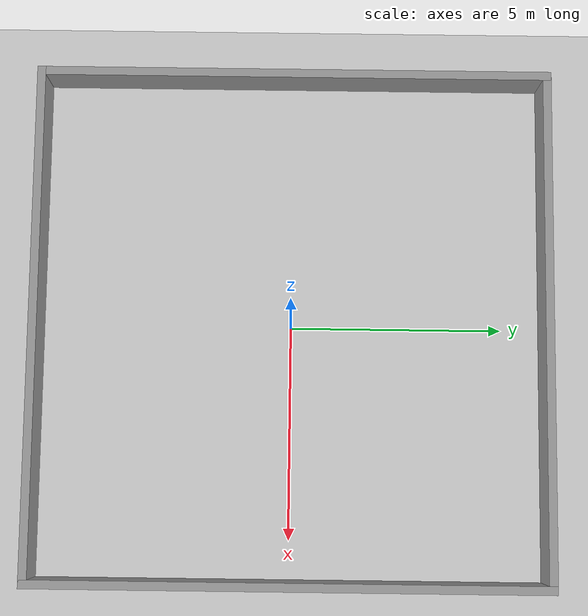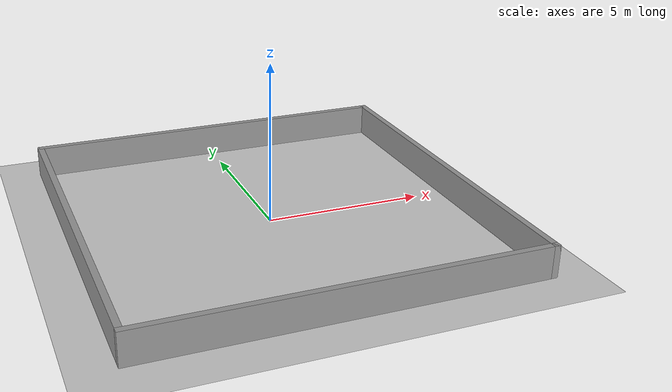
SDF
<sdf version="1.4">
 <world name="default">
  <light name="sun" type="directional">
   <pose>0 0 10 0 -0 0</pose>
   <diffuse>0.8 0.8 0.8 1</diffuse>
   <specular>0.2 0.2 0.2 1</specular>
   <attenuation>
    <range>1000</range>
    <constant>0.9</constant>
    <linear>0.01</linear>
    <quadratic>0.001</quadratic>
   </attenuation>
   <direction>-0.5 0.1 -0.9</direction>
  </light>
  <model name="ground_plane">
   <static>1</static>
   <link name="link">
    <collision name="collision">
     <geometry><plane><normal>0 0 1</normal><size>100 100</size></plane></geometry>
     <surface><friction><ode><mu>100</mu><mu2>50</mu2></ode></friction></surface>
    </collision>
    <visual name="visual">
     <cast_shadows>0</cast_shadows>
     <geometry><plane><normal>0 0 1</normal><size>100 100</size></plane></geometry>
     <material>
      <script><uri>file://media/materials/scripts/gazebo.material</uri><name>Gazebo/Grey</name></script>
     </material>
    </visual>
    <velocity_decay><linear>0</linear><angular>0</angular></velocity_decay>
   </link>
  </model>
  <physics type="ode">
   <max_step_size>0.001</max_step_size>
   <real_time_factor>1</real_time_factor>
   <real_time_update_rate>1000</real_time_update_rate>
   <gravity>0 0 -9.8</gravity>
  </physics>
  <scene><ambient>0.4 0.4 0.4 1</ambient><background>0.7 0.7 0.7 1</background><shadows>1</shadows></scene>
  <spherical_coordinates>
   <surface_model>EARTH_WGS84</surface_model>
   <latitude_deg>0</latitude_deg>
   <longitude_deg>0</longitude_deg>
   <elevation>0</elevation>
   <heading_deg>0</heading_deg>
  </spherical_coordinates>
  <model name="task_1">
   <static>1</static>
   <link name="Wall_16">
    <collision name="Wall_16_Collision">
     <geometry><box><size>12 0.2 1</size></box></geometry>
     <pose>0 0 0.5 0 -0 0</pose>
    </collision>
    <visual name="Wall_16_Visual">
     <pose>0 0 0.5 0 -0 0</pose>
     <geometry><box><size>12 0.2 1</size></box></geometry>
     <material>
      <script><uri>file://media/materials/scripts/gazebo.material</uri><name>Gazebo/Grey</name></script>
     </material>
    </visual>
    <velocity_decay><linear>0</linear><angular>0</angular></velocity_decay>
    <pose>-6 0.1 0 0 0 -1.5708</pose>
   </link>
   <link name="Wall_18">
    <collision name="Wall_18_Collision">
     <geometry><box><size>12.2 0.2 1</size></box></geometry>
     <pose>0 0 0.5 0 -0 0</pose>
    </collision>
    <visual name="Wall_18_Visual">
     <pose>0 0 0.5 0 -0 0</pose>
     <geometry><box><size>12.2 0.2 1</size></box></geometry>
     <material>
      <script><uri>file://media/materials/scripts/gazebo.material</uri><name>Gazebo/Grey</name></script>
     </material>
    </visual>
    <velocity_decay><linear>0</linear><angular>0</angular></velocity_decay>
    <pose>6 0 0 0 -0 1.5708</pose>
   </link>
   <link name="Wall_23">
    <collision name="Wall_23_Collision">
     <geometry><box><size>12 0.2 1</size></box></geometry>
     <pose>0 0 0.5 0 -0 0</pose>
    </collision>
    <visual name="Wall_23_Visual">
     <pose>0 0 0.5 0 -0 0</pose>
     <geometry><box><size>12 0.2 1</size></box></geometry>
     <material>
      <script><uri>file://media/materials/scripts/gazebo.material</uri><name>Gazebo/Grey</name></script>
     </material>
    </visual>
    <velocity_decay><linear>0</linear><angular>0</angular></velocity_decay>
    <pose>-0.050497 6.00163 0 0 -0 0</pose>
   </link>
   <link name="Wall_25">
    <collision name="Wall_25_Collision">
     <geometry><box><size>12.2 0.2 1</size></box></geometry>
     <pose>0 0 0.5 0 -0 0</pose>
    </collision>
    <visual name="Wall_25_Visual">
     <pose>0 0 0.5 0 -0 0</pose>
     <geometry><box><size>12.2 0.2 1</size></box></geometry>
     <material>
      <script><uri>file://media/materials/scripts/gazebo.material</uri><name>Gazebo/Grey</name></script>
     </material>
    </visual>
    <velocity_decay><linear>0</linear><angular>0</angular></velocity_decay>
    <pose>0 -6 0 0 -0 0</pose>
   </link>
   <static>1</static>
  </model>
 </world>
</sdf>
